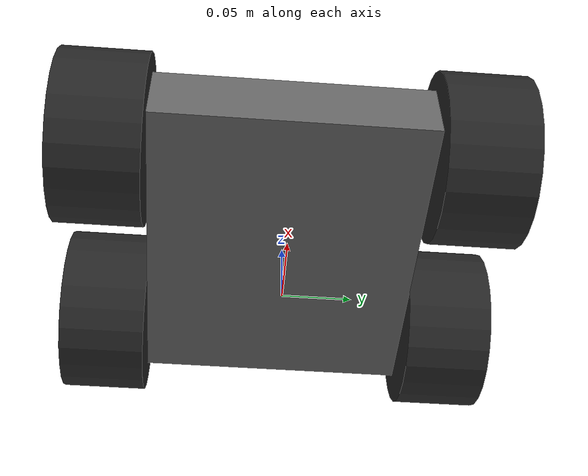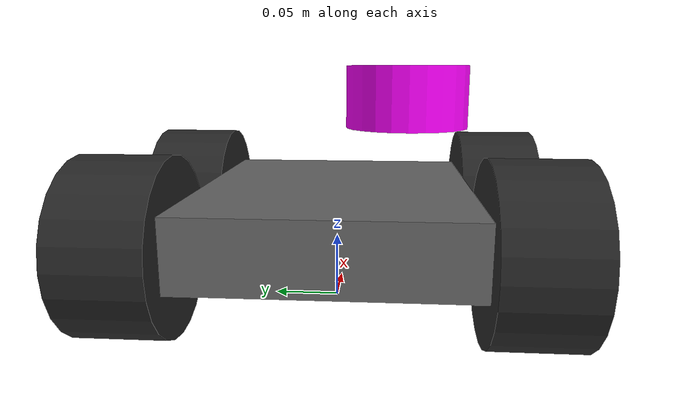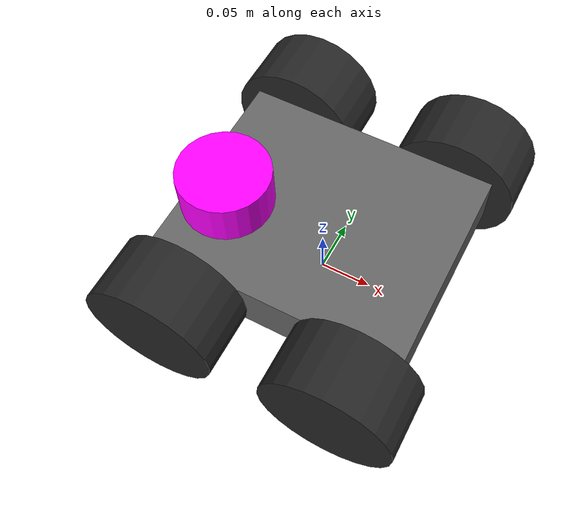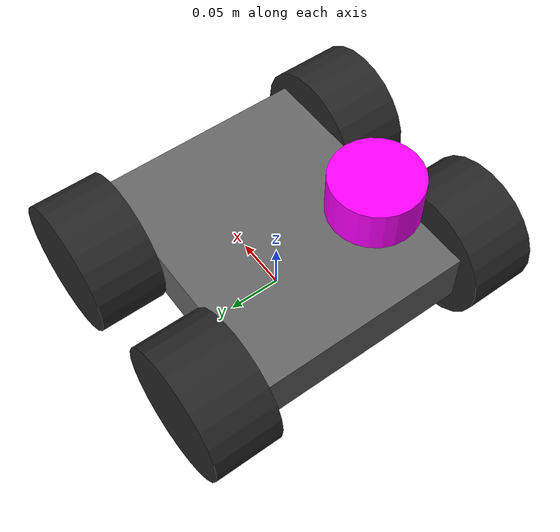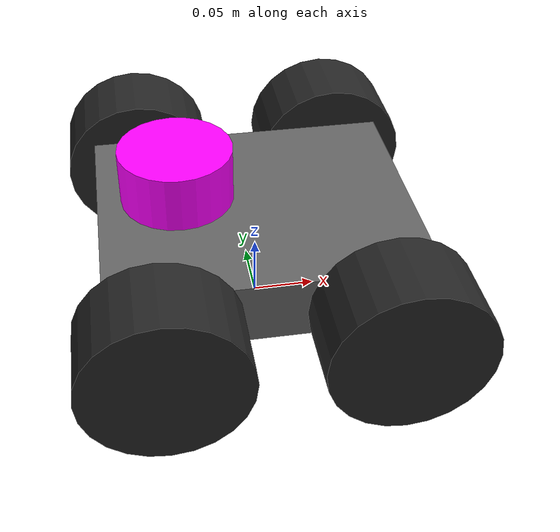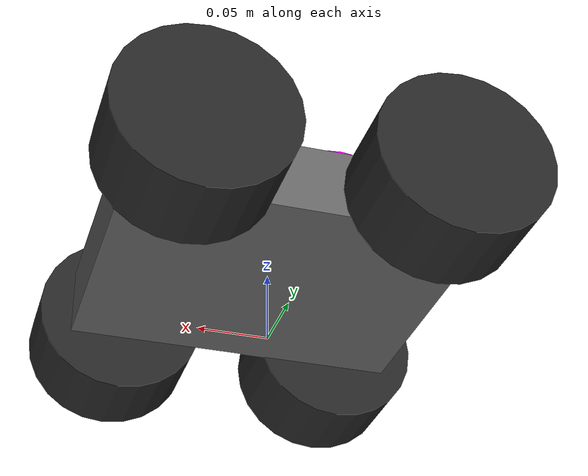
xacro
<?xml version="1.0"?>
<robot name="trover" xmlns:xacro="http://www.ros.org/wiki/xacro">

  <!-- PROPERTIES -->

  <!-- Dimensions (meters) -->
  <xacro:property name="chassis_length" value="0.24765"/>
  <xacro:property name="chassis_width"  value="0.2032"/>
  <xacro:property name="chassis_height" value="0.0508"/>

  <xacro:property name="wheel_diameter" value="0.125"/>
  <xacro:property name="wheel_radius"   value="${wheel_diameter/2}"/>
  <xacro:property name="wheel_width"    value="0.0635"/>

  <xacro:property name="ground_clearance" value="0.0414"/>

  <!-- Mass -->
  <xacro:property name="total_mass" value="1.98"/>
  <xacro:property name="wheel_mass" value="0.2"/>
  <xacro:property name="chassis_mass" value="${total_mass - 4*wheel_mass}"/>

  <!-- Wheel placement -->
  <xacro:property name="wheel_x_offset" value="${chassis_length/2 - 0.0381}"/>
  <xacro:property name="wheel_y_offset" value="${chassis_width/2 + wheel_width/2}"/>
  <xacro:property name="wheel_z" value="${wheel_radius}"/>

  <!-- Sensor placement -->
  <xacro:property name="lidar_x" value="0.0635"/>
  <xacro:property name="lidar_y" value="-0.0508"/>
  <xacro:property name="lidar_z" value="${ground_clearance + chassis_height + 0.06985}"/>

  <!-- BASE FOOTPRINT (dummy link for KDL) -->

  <link name="base_footprint"/>

  <joint name="base_joint" type="fixed">
    <parent link="base_footprint"/>
    <child link="base_link"/>
    <origin xyz="0 0 0" rpy="0 0 0"/>
  </joint>

  <!-- CHASSIS -->

  <link name="base_link">
    <inertial>
      <mass value="${chassis_mass}"/>
      <origin xyz="0 0 ${ground_clearance + chassis_height/2}"/>
      <inertia
        ixx="${(1/12.0)*chassis_mass*(chassis_width*chassis_width + chassis_height*chassis_height)}"
        iyy="${(1/12.0)*chassis_mass*(chassis_length*chassis_length + chassis_height*chassis_height)}"
        izz="${(1/12.0)*chassis_mass*(chassis_length*chassis_length + chassis_width*chassis_width)}"
        ixy="0" ixz="0" iyz="0"/>
    </inertial>

    <visual>
      <origin xyz="0 0 ${ground_clearance + chassis_height/2}"/>
      <geometry>
        <box size="${chassis_length} ${chassis_width} ${chassis_height}"/>
      </geometry>
      <material name="Dark Gray">
        <color rgba="0.4 0.4 0.4 1"/>
      </material>
    </visual>

    <collision>
      <origin xyz="0 0 ${ground_clearance + chassis_height/2}"/>
      <geometry>
        <box size="${chassis_length} ${chassis_width} ${chassis_height}"/>
      </geometry>
    </collision>
  </link>

  <gazebo reference="base_link">
    <material>Gazebo/DarkGrey</material>
  </gazebo>

  <!-- WHEEL MACRO -->

  <xacro:macro name="wheel" params="name x y">
    <link name="${name}">
      <inertial>
        <mass value="${wheel_mass}"/>
        <origin xyz="0 0 0"/>
        <inertia
          ixx="${(1/12.0)*wheel_mass*(3*wheel_radius*wheel_radius + wheel_width*wheel_width)}"
          iyy="${(1/12.0)*wheel_mass*(3*wheel_radius*wheel_radius + wheel_width*wheel_width)}"
          izz="${0.5*wheel_mass*wheel_radius*wheel_radius}"
          ixy="0" ixz="0" iyz="0"/>
      </inertial>

      <visual>
        <origin rpy="1.5708 0 0"/>
        <geometry>
          <cylinder radius="${wheel_radius}" length="${wheel_width}"/>
        </geometry>
        <material name="Black">
        <color rgba="0.15 0.15 0.15 1"/>
        </material>
      </visual>

      <collision>
        <origin rpy="1.5708 0 0"/>
        <geometry>
          <cylinder radius="${wheel_radius}" length="${wheel_width}"/>
        </geometry>
      </collision>
    </link>

    <joint name="${name}_joint" type="continuous">
      <parent link="base_link"/>
      <child link="${name}"/>
      <origin xyz="${x} ${y} ${wheel_z}"/>
      <axis xyz="0 1 0"/>
    </joint>

    <gazebo reference="${name}">
      <material>Gazebo/FlatBlack</material>
      <mu1>1.2</mu1>
      <mu2>1.2</mu2>
    </gazebo>
  </xacro:macro>

  <!-- WHEELS -->

  <xacro:wheel name="rear_left_wheel"  x="-${wheel_x_offset}" y="${wheel_y_offset}"/>
  <xacro:wheel name="rear_right_wheel" x="-${wheel_x_offset}" y="-${wheel_y_offset}"/>

  <!-- Front wheels (mechanically coupled via mimic) -->
  <link name="front_left_wheel">
    <inertial>
      <mass value="${wheel_mass}"/>
      <origin xyz="0 0 0"/>
      <inertia
        ixx="${(1/12.0)*wheel_mass*(3*wheel_radius*wheel_radius + wheel_width*wheel_width)}"
        iyy="${(1/12.0)*wheel_mass*(3*wheel_radius*wheel_radius + wheel_width*wheel_width)}"
        izz="${0.5*wheel_mass*wheel_radius*wheel_radius}"
        ixy="0" ixz="0" iyz="0"/>
    </inertial>
    <visual>
      <origin rpy="1.5708 0 0"/>
      <geometry>
        <cylinder radius="${wheel_radius}" length="${wheel_width}"/>
      </geometry>
      <material name="Black">
        <color rgba="0.15 0.15 0.15 1"/>
      </material>
    </visual>
    <collision>
      <origin rpy="1.5708 0 0"/>
      <geometry>
        <cylinder radius="${wheel_radius}" length="${wheel_width}"/>
      </geometry>
    </collision>
  </link>

  <joint name="front_left_wheel_joint" type="continuous">
    <parent link="base_link"/>
    <child link="front_left_wheel"/>
    <origin xyz="${wheel_x_offset} ${wheel_y_offset} ${wheel_z}"/>
    <axis xyz="0 1 0"/>
    <mimic joint="rear_left_wheel_joint"/>
  </joint>

  <gazebo reference="front_left_wheel">
    <material>Gazebo/FlatBlack</material>
    <mu1>1.2</mu1>
    <mu2>1.2</mu2>
  </gazebo>

  <link name="front_right_wheel">
    <inertial>
      <mass value="${wheel_mass}"/>
      <origin xyz="0 0 0"/>
      <inertia
        ixx="${(1/12.0)*wheel_mass*(3*wheel_radius*wheel_radius + wheel_width*wheel_width)}"
        iyy="${(1/12.0)*wheel_mass*(3*wheel_radius*wheel_radius + wheel_width*wheel_width)}"
        izz="${0.5*wheel_mass*wheel_radius*wheel_radius}"
        ixy="0" ixz="0" iyz="0"/>
    </inertial>
    <visual>
      <origin rpy="1.5708 0 0"/>
      <geometry>
        <cylinder radius="${wheel_radius}" length="${wheel_width}"/>
      </geometry>
      <material name="Black">
        <color rgba="0.15 0.15 0.15 1"/>
      </material>
    </visual>
    <collision>
      <origin rpy="1.5708 0 0"/>
      <geometry>
        <cylinder radius="${wheel_radius}" length="${wheel_width}"/>
      </geometry>
    </collision>
  </link>

  <joint name="front_right_wheel_joint" type="continuous">
    <parent link="base_link"/>
    <child link="front_right_wheel"/>
    <origin xyz="${wheel_x_offset} -${wheel_y_offset} ${wheel_z}"/>
    <axis xyz="0 1 0"/>
    <mimic joint="rear_right_wheel_joint"/>
  </joint>

  <gazebo reference="front_right_wheel">
    <material>Gazebo/FlatBlack</material>
    <mu1>1.2</mu1>
    <mu2>1.2</mu2>
  </gazebo>

  <!-- IMU -->

  <link name="imu_link"/>

  <joint name="imu_joint" type="fixed">
    <parent link="base_link"/>
    <child link="imu_link"/>
    <origin xyz="0 0 ${ground_clearance + chassis_height/2}" rpy="0 0 0"/>
  </joint>

  <gazebo reference="imu_link">
    <sensor name="imu_sensor" type="imu">
      <always_on>true</always_on>
      <update_rate>100</update_rate>
      <imu>
        <angular_velocity>
          <x><noise type="gaussian"><mean>0.0</mean><stddev>2e-4</stddev></noise></x>
          <y><noise type="gaussian"><mean>0.0</mean><stddev>2e-4</stddev></noise></y>
          <z><noise type="gaussian"><mean>0.0</mean><stddev>2e-4</stddev></noise></z>
        </angular_velocity>
        <linear_acceleration>
          <x><noise type="gaussian"><mean>0.0</mean><stddev>1.7e-2</stddev></noise></x>
          <y><noise type="gaussian"><mean>0.0</mean><stddev>1.7e-2</stddev></noise></y>
          <z><noise type="gaussian"><mean>0.0</mean><stddev>1.7e-2</stddev></noise></z>
        </linear_acceleration>
      </imu>
      <plugin name="imu_plugin" filename="libgazebo_ros_imu_sensor.so">
        <ros>
          <remapping>~/out:=imu/data</remapping>
        </ros>
        <frame_name>imu_link</frame_name>
      </plugin>
    </sensor>
  </gazebo>

  <!-- LIDAR -->

  <link name="lidar_link">
    <visual>
      <origin xyz="0 0 0" rpy="0 0 0"/>
      <geometry>
        <cylinder radius="0.04" length="0.04"/>
      </geometry>
      <material name="purple">
        <color rgba="1 0 1 1"/>
      </material>
    </visual>
    <collision>
      <origin xyz="0 0 0" rpy="0 0 0"/>
      <geometry>
        <cylinder radius="0.04" length="0.04"/>
      </geometry>
    </collision>
    <inertial>
      <mass value="0.1"/>
      <origin xyz="0 0 0" rpy="0 0 0"/>
      <inertia ixx="1e-4" iyy="1e-4" izz="1e-4" ixy="0" ixz="0" iyz="0"/>
    </inertial>
  </link>

  <joint name="lidar_joint" type="fixed">
    <parent link="base_link"/>
    <child link="lidar_link"/>
    <origin xyz="${-lidar_x} ${lidar_y} ${lidar_z}" rpy="0 0 0"/>
  </joint>

  <gazebo reference="lidar_link">
  <material>Gazebo/Purple</material>
  <sensor name="lidar" type="ray">
    <always_on>true</always_on>
    <visualize>true</visualize>
    <update_rate>5</update_rate>
    <ray>
      <scan>
        <horizontal>
          <samples>360</samples>
          <resolution>1.0</resolution>
          <min_angle>-3.14159</min_angle>
          <max_angle>3.14159</max_angle>
        </horizontal>
      </scan>
      <range>
        <min>0.15</min>
        <max>10.0</max>
        <resolution>0.01</resolution>
      </range>
      <noise>
        <type>gaussian</type>
        <mean>0.0</mean>
        <stddev>0.01</stddev>
      </noise>
    </ray>
    <plugin name="scan" filename="libgazebo_ros_ray_sensor.so">
      <ros>
        <namespace>/</namespace>
        <remapping>~/out:=scan</remapping>
      </ros>
      <output_type>sensor_msgs/LaserScan</output_type>
      <frame_name>lidar_link</frame_name>
    </plugin>
  </sensor>
  </gazebo>

  <!-- DIFFERENTIAL DRIVE -->

  <gazebo>
    <plugin name="diff_drive" filename="libgazebo_ros_diff_drive.so">
      <left_joint>rear_left_wheel_joint</left_joint>
      <right_joint>rear_right_wheel_joint</right_joint>
      <wheel_separation>${2 * wheel_y_offset}</wheel_separation>
      <wheel_diameter>${wheel_diameter}</wheel_diameter>
      <max_wheel_torque>20</max_wheel_torque>
      <max_wheel_acceleration>1.0</max_wheel_acceleration>
      <command_topic>cmd_vel</command_topic>
      <odometry_topic>odom</odometry_topic>
      <odometry_frame>odom</odometry_frame>
      <robot_base_frame>base_link</robot_base_frame>
      <publish_odom>true</publish_odom>
      <publish_odom_tf>true</publish_odom_tf>
      <publish_wheel_tf>false</publish_wheel_tf>
      <update_rate>100</update_rate>
    </plugin>
  </gazebo>

  <!-- JOINT STATE PUBLISHER -->

  <gazebo>
    <plugin name="joint_state_publisher" filename="libgazebo_ros_joint_state_publisher.so">
      <ros>
        <remapping>~/out:=joint_states</remapping>
      </ros>
      <update_rate>50</update_rate>
      <joint_name>rear_left_wheel_joint</joint_name>
      <joint_name>rear_right_wheel_joint</joint_name>
    </plugin>
  </gazebo>

</robot>
